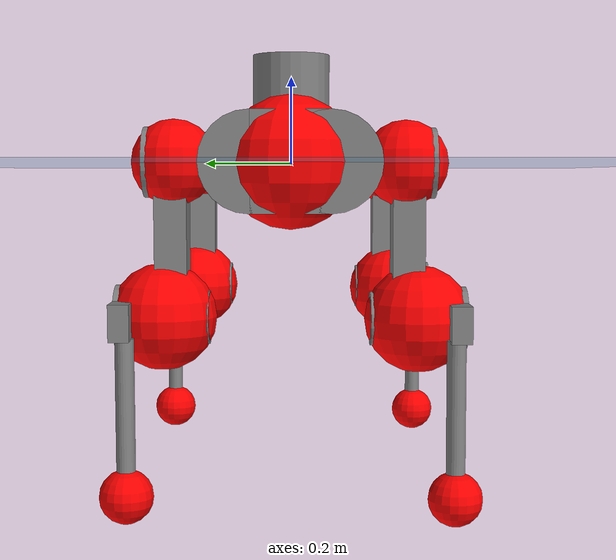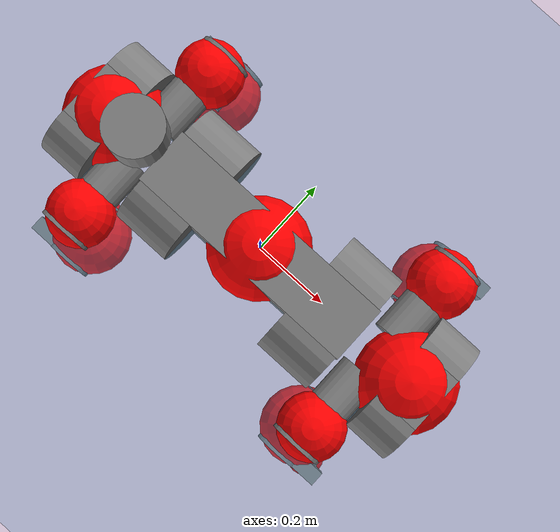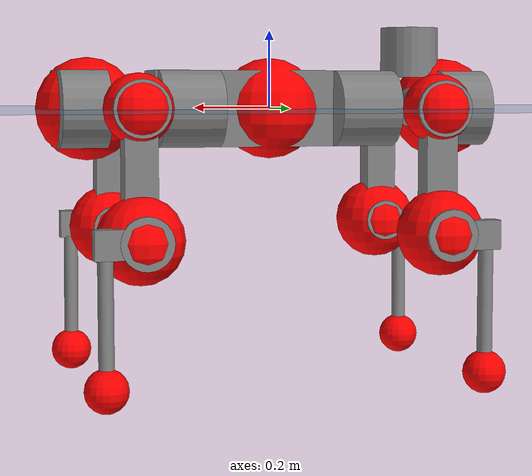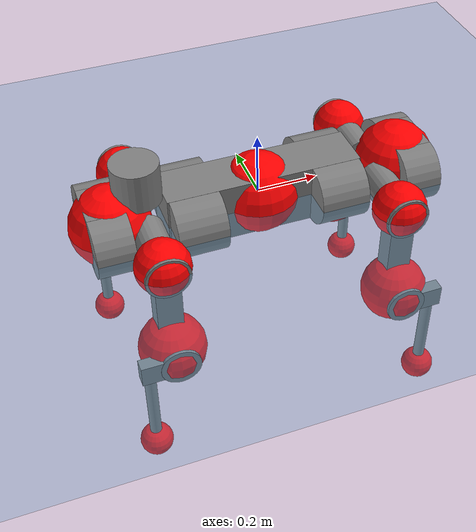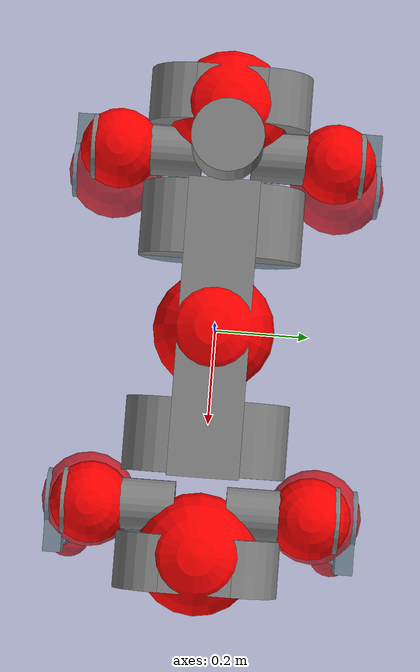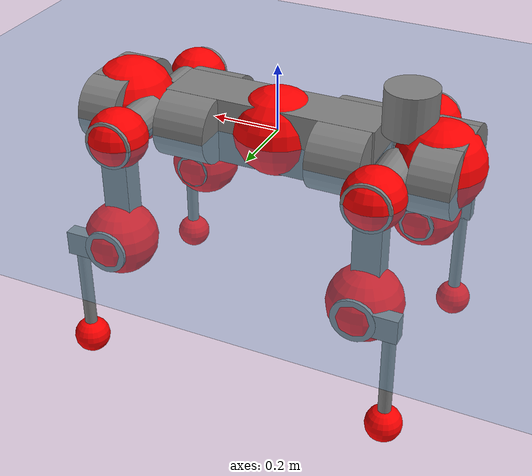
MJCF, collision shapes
<mujoco model="anymal_c">
  <compiler angle="radian" assetdir="assets" balanceinertia="true" inertiafromgeom="false"/>

  <option timestep="0.005" density="1.2" viscosity="2e-05"/>

  <size nkey="1"/>

  <visual>
    <quality shadowsize="8192"/>
    <map shadowclip="0.5"/>
  </visual>

  <default>
    <default class="/">
      <material specular="0" shininess="0.25"/>
      <geom contype="0" conaffinity="0" group="1" solref="-1000 -80"/>
      <site size="0.01 0.005 0.005" group="5"/>
      <general forcelimited="true" forcerange="-80 80" biastype="affine" gainprm="80" biasprm="0 -80 -2"/>
      <default class="anymal_c">
        <joint armature="0.01" damping="0.01" frictionloss="0.1"/>
        <default class="visual">
          <geom type="mesh" group="2"/>
          <default class="visual_zflip"/>
        </default>
        <default class="collision">
          <geom type="cylinder" group="3"/>
          <default class="foot">
            <geom size="0.03 0 0" type="sphere" condim="6" priority="1" friction="0.8 0.02 0.01" solimp="0.015 1 0.03"/>
          </default>
        </default>
      </default>
      <default class="reward_collision_sphere">
        <geom group="5" rgba="1 0 0 1"/>
      </default>
    </default>
  </default>

  <asset>
    <texture type="skybox" colorspace="auto" name="//unnamed_texture_0" builtin="gradient" rgb1="0.95 0.95 0.95" rgb2="0.95 0.95 0.95" width="100" height="600"/>
    <texture type="2d" colorspace="auto" name="texplane" builtin="checker" rgb1="0.345 0.575 0.748" rgb2="0.345 0.575 0.748" markrgb="1 1 1" width="512" height="512"/>
    <texture type="2d" colorspace="linear" name="base" file="base.png"/>
    <texture type="2d" colorspace="linear" name="top_shell" file="top_shell.png"/>
    <texture type="2d" colorspace="linear" name="bottom_shell" file="bottom_shell.png"/>
    <texture type="2d" colorspace="linear" name="remote" file="remote.png"/>
    <texture type="2d" colorspace="linear" name="hatch" file="hatch.png"/>
    <texture type="2d" colorspace="linear" name="handle" file="handle.png"/>
    <texture type="2d" colorspace="linear" name="face" file="face.png"/>
    <texture type="2d" colorspace="linear" name="battery" file="battery.png"/>
    <texture type="2d" colorspace="linear" name="lidar_cage" file="lidar_cage.png"/>
    <texture type="2d" colorspace="linear" name="depth_camera" file="depth_camera.png"/>
    <texture type="2d" colorspace="linear" name="wide_angle_camera" file="wide_angle_camera.png"/>
    <texture type="2d" colorspace="linear" name="lidar" file="lidar.png"/>
    <texture type="2d" colorspace="linear" name="drive" file="drive.png"/>
    <texture type="2d" colorspace="linear" name="hip_l" file="hip_l.png"/>
    <texture type="2d" colorspace="linear" name="shank_l" file="shank_l.png"/>
    <texture type="2d" colorspace="linear" name="foot" file="foot.png"/>
    <texture type="2d" colorspace="linear" name="thigh" file="thigh.png"/>
    <texture type="2d" colorspace="linear" name="shank_r" file="shank_r.png"/>
    <texture type="2d" colorspace="linear" name="hip_r" file="hip_r.png"/>
    <material name="MatPlane" class="/" texture="texplane" texuniform="true" texrepeat="2 2" specular="0.9" shininess="0.5"/>
    <material name="black_plastic" class="/" rgba="0.007 0.007 0.007 1"/>
    <material name="green" class="/" rgba="0.052 0.178 0.033 1"/>
    <material name="red" class="/" rgba="0.178 0.006 0.005 1"/>
    <material name="yellow" class="/" rgba="0.178 0.119 0.006 1"/>
    <material name="lwl" class="/" rgba="0.8 0.8 0.8 1"/>
    <material name="base" class="/" texture="base"/>
    <material name="top_shell" class="/" texture="top_shell"/>
    <material name="bottom_shell" class="/" texture="bottom_shell"/>
    <material name="hip_l" class="/" texture="hip_l"/>
    <material name="thigh" class="/" texture="thigh"/>
    <material name="shank_l" class="/" texture="shank_l"/>
    <material name="foot" class="/" texture="foot"/>
    <material name="hip_r" class="/" texture="hip_r"/>
    <material name="shank" class="/" texture="shank_r"/>
    <material name="hatch" class="/" texture="hatch"/>
    <material name="remote" class="/" texture="remote"/>
    <material name="handle" class="/" texture="handle"/>
    <material name="face" class="/" texture="face"/>
    <material name="depth_camera" class="/" texture="depth_camera"/>
    <material name="wide_angle_camera" class="/" texture="wide_angle_camera"/>
    <material name="battery" class="/" texture="battery"/>
    <material name="lidar_cage" class="/" texture="lidar_cage"/>
    <material name="lidar" class="/" texture="lidar"/>
    <material name="drive" class="/" texture="drive"/>
    <mesh name="base_0" class="/" file="base_0.obj"/>
    <mesh name="base_1" class="/" file="base_1.obj"/>
    <mesh name="base_2" class="/" file="base_2.obj"/>
    <mesh name="base_3" class="/" file="base_3.obj"/>
    <mesh name="base_4" class="/" file="base_4.obj"/>
    <mesh name="base_5" class="/" file="base_5.obj"/>
    <mesh name="top_shell" class="/" file="top_shell.obj"/>
    <mesh name="bottom_shell" class="/" file="bottom_shell.obj"/>
    <mesh name="remote" class="/" file="remote.obj"/>
    <mesh name="handle" class="/" file="handle.obj"/>
    <mesh name="face" class="/" file="face.obj"/>
    <mesh name="wide_angle_camera" class="/" file="wide_angle_camera.obj"/>
    <mesh name="depth_camera" class="/" file="depth_camera.obj"/>
    <mesh name="battery" class="/" file="battery.obj"/>
    <mesh name="lidar_cage" class="/" file="lidar_cage.obj"/>
    <mesh name="lidar" class="/" file="lidar.obj"/>
    <mesh name="drive" class="/" file="drive.obj"/>
    <mesh name="hip_l" class="/" file="hip_l.obj"/>
    <mesh name="thigh" class="/" file="thigh.obj"/>
    <mesh name="shank_l" class="/" file="shank_l.obj"/>
    <mesh name="foot" class="/" file="foot.obj"/>
    <mesh name="hip_r" class="/" file="hip_r.obj"/>
    <mesh name="hatch" class="/" file="hatch.obj"/>
    <mesh name="shank_r" class="/" file="shank_r.obj"/>
  </asset>

  <worldbody>
    <geom name="floor" class="/" size="100 100 0.125" type="plane" group="0" material="MatPlane"/>
    <light name="toplight_shadow" class="/" pos="0 0 5" dir="0.0990148 0.0990148 -0.990148" type="directional" ambient="0.04 0.04 0.04" diffuse="0.55 0.55 0.55" specular="0.12 0.12 0.12"/>
    <light name="toplight_fill" class="/" pos="0 0 5" dir="0.0990148 0.0990148 -0.990148" type="directional" castshadow="false" ambient="0.04 0.04 0.04" diffuse="0.3 0.3 0.3" specular="0.08 0.08 0.08"/>
    <body name="trunk" childclass="anymal_c" pos="-0.000483718 -0.00256607 -0.00103378" quat="1 6.36254e-05 -1.95243e-05 -2.87229e-05">
      <inertial pos="0.00338319 -0.00232803 0.054621" quat="0.499711 0.501229 0.498925 0.500133" mass="23.9784" diaginertia="0.83292 0.96114 0.350936"/>
      <joint name="//unnamed_joint_0" type="free" armature="0" damping="0" frictionloss="0"/>
      <geom name="//unnamed_geom_1" class="visual" material="green" mesh="base_0"/>
      <geom name="//unnamed_geom_2" class="visual" material="yellow" mesh="base_1"/>
      <geom name="//unnamed_geom_3" class="visual" material="red" mesh="base_2"/>
      <geom name="//unnamed_geom_4" class="visual" material="black_plastic" mesh="base_3"/>
      <geom name="//unnamed_geom_5" class="visual" material="lwl" mesh="base_4"/>
      <geom name="//unnamed_geom_6" class="visual" material="base" mesh="base_5"/>
      <geom name="trunk_1" class="collision" size="0.315993 0.0762741 0.0980667" type="box"/>
      <geom name="trunk_2" class="collision" size="0.0980667 0.0789982" pos="0.231286 0.0771612 0" quat="0.707107 0 0.707107 0"/>
      <geom name="trunk_3" class="collision" size="0.0980667 0.0789982" pos="-0.231286 0.0771612 0" quat="0.707107 0 0.707107 0"/>
      <geom name="trunk_4" class="collision" size="0.0980667 0.0789982" pos="0.231286 -0.0771612 0" quat="0.707107 0 0.707107 0"/>
      <geom name="trunk_5" class="collision" size="0.0980667 0.0789982" pos="-0.231286 -0.0771612 0" quat="0.707107 0 0.707107 0"/>
      <geom name="//unnamed_geom_12" class="visual" material="top_shell" mesh="top_shell"/>
      <geom name="//unnamed_geom_13" class="visual" material="bottom_shell" mesh="bottom_shell"/>
      <geom name="//unnamed_geom_14" class="visual" material="remote" mesh="remote"/>
      <geom name="//unnamed_geom_15" class="visual" material="handle" mesh="handle"/>
      <geom name="//unnamed_geom_16" class="visual" pos="0.440772 0 0" quat="1 0 0 0" material="face" mesh="face"/>
      <geom name="trunk_6" class="collision" size="0.0599297 0.0762741 0.0980667" pos="0.499258 0 0" type="box"/>
      <geom name="//unnamed_geom_18" class="collision" size="0.0980667 0.0599297" pos="0.499258 0.0771612 0" quat="0.707107 0 0.707107 0"/>
      <geom name="//unnamed_geom_19" class="collision" size="0.0980667 0.0599297" pos="0.499258 -0.0771612 0" quat="0.707107 0 0.707107 0"/>
      <geom name="//unnamed_geom_20" class="visual" pos="0.490912 0 -0.0325163" quat="0.965926 0 0.258819 0" material="depth_camera" mesh="depth_camera"/>
      <geom name="//unnamed_geom_21" class="visual" pos="0.545515 0 0.016515" material="wide_angle_camera" mesh="wide_angle_camera"/>
      <geom name="//unnamed_geom_22" class="visual_zflip" pos="-0.440772 0 0" quat="0 0 0 1" material="face" mesh="face"/>
      <geom name="trunk_7" class="collision" size="0.0599297 0.0762741 0.0980667" pos="-0.499258 0 0" quat="0 0 0 1" type="box"/>
      <geom name="//unnamed_geom_24" class="collision" size="0.0980667 0.0599297" pos="-0.499258 -0.0771612 0" quat="0 -0.707107 0 0.707107"/>
      <geom name="//unnamed_geom_25" class="collision" size="0.0980667 0.0599297" pos="-0.499258 0.0771612 0" quat="0 -0.707107 0 0.707107"/>
      <geom name="//unnamed_geom_26" class="visual" pos="-0.490912 0 -0.0325163" quat="0 -0.258819 0 0.965926" material="depth_camera" mesh="depth_camera"/>
      <geom name="//unnamed_geom_27" class="visual_zflip" pos="-0.545515 0 0.016515" quat="0 0 0 1" material="wide_angle_camera" mesh="wide_angle_camera"/>
      <geom name="//unnamed_geom_28" class="visual" material="battery" mesh="battery"/>
      <geom name="//unnamed_geom_29" class="visual" pos="0 0.0847944 0.0317455" quat="0.683013 -0.183013 0.183013 0.683013" material="depth_camera" mesh="depth_camera"/>
      <geom name="//unnamed_geom_30" class="visual" pos="0 -0.0847944 0.0317455" quat="0.683013 0.183013 0.183013 -0.683013" material="depth_camera" mesh="depth_camera"/>
      <geom name="//unnamed_geom_31" class="visual" pos="-0.387071 0 0.0810857" quat="1 0 0 0" material="lidar_cage" mesh="lidar_cage"/>
      <geom name="trunk_8" class="collision" size="0.0762741 0.0653778" pos="-0.387071 0 0.147278"/>
      <geom name="//unnamed_geom_33" class="visual" pos="-0.387071 1.52906e-05 0.156876" quat="0.707107 0 0 -0.707107" material="lidar" mesh="lidar"/>
      <geom name="//unnamed_geom_34" class="visual" pos="0.318908 0.11464 -1.5591e-11" quat="0.258819 0.965926 0 0" material="drive" mesh="drive"/>
      <geom name="//unnamed_geom_35" class="visual" pos="0.318908 -0.11464 1.5591e-11" quat="0.258819 -0.965926 0 0" material="drive" mesh="drive"/>
      <geom name="//unnamed_geom_36" class="visual" pos="-0.318908 0.11464 1.5591e-11" quat="0 0 0.965926 -0.258819" material="drive" mesh="drive"/>
      <geom name="//unnamed_geom_37" class="visual" pos="-0.318908 -0.11464 -1.5591e-11" quat="0 0 -0.965926 -0.258819" material="drive" mesh="drive"/>
      <geom name="//unnamed_geom_38" class="visual" pos="0.123352 0 0.080534" quat="1 0 0 0" material="hatch" mesh="hatch"/>
      <geom name="//unnamed_geom_39" class="reward_collision_sphere" size="0.130756"/>
      <geom name="//unnamed_geom_40" class="reward_collision_sphere" size="0.130756" pos="0.478522 0 0"/>
      <geom name="//unnamed_geom_41" class="reward_collision_sphere" size="0.130756" pos="-0.478522 0 0"/>
      <site name="imu" pos="0.277819 0.0231262 0.0382043" size="0.0108963"/>
      <camera name="track" pos="0 -2.2046 0" quat="0.707107 0.707107 0 0" mode="trackcom"/>
      <camera name="ego_camera" pos="0.478522 0 -0.0441282" quat="-0.5 -0.5 0.5 0.5"/>
      <body name="LF_HIP" pos="0.32213 0.115355 0.00185976" quat="0.258814 0.965927 0.00107831 -0.00053419">
        <inertial pos="0.0609745 -0.0165567 -0.00649225" quat="-0.128439 0.711959 -0.131228 0.677789" mass="3.49334" diaginertia="0.00795898 0.00772161 0.00534203"/>
        <joint name="LF_HAA" pos="0 0 0" axis="0.999999 -0.00135015 -0.000260307" stiffness="0.00569054" range="-0.712525 0.540819" armature="0.0112455" damping="0" frictionloss="0.124271"/>
        <geom name="//unnamed_geom_42" class="visual" pos="0 -9.17149e-07 1.50641e-07" quat="0.258819 -0.965926 0 0" material="hip_l" mesh="hip_l"/>
        <geom name="//unnamed_geom_43" class="visual" pos="0.0636966 -0.0776948 -0.0448638" quat="0.183013 -0.683013 0.683013 0.183013" material="drive" mesh="drive"/>
        <geom name="//unnamed_geom_44" class="collision" size="0.0544815 0.0762741" pos="0.0636966 -0.0131833 -0.00761764" quat="-0.353553 -0.612372 0.612372 -0.353553"/>
        <body name="LF_THIGH" pos="0.0642191 -0.079562 -0.0465757" quat="0.183161 -0.681994 0.683893 0.183372">
          <inertial pos="0.035666 0.00286791 -0.271499" quat="0.993417 -0.0142463 -0.081457 0.0792733" mass="3.97107" diaginertia="0.0402236 0.0480007 0.00666454"/>
          <joint name="LF_HFE" pos="0 0 0" axis="0.99993 -0.00529522 -0.0105677" range="-3.0968 3.1703" armature="0.0121875" damping="0.0100259" frictionloss="0.119536"/>
          <geom name="//unnamed_geom_45" class="visual" pos="-0.000774354 -1.2202e-06 0" quat="0.707107 0 0 -0.707107" material="thigh" mesh="thigh"/>
          <geom name="//unnamed_geom_46" class="collision" size="0.070826 0.0435852" pos="0.0425353 0 0" quat="0.5 0.5 -0.5 -0.5"/>
          <geom name="//unnamed_geom_47" class="collision" size="0.0408611 0.0326889 0.15398" pos="0.0319015 0 -0.155898" quat="0.707107 0 0 -0.707107" type="box"/>
          <geom name="//unnamed_geom_48" class="visual" pos="0.106657 0 -0.314414" quat="1 0 0 0" material="drive" mesh="drive"/>
          <geom name="//unnamed_geom_49" class="collision" size="0.0544815 0.0762741" pos="0.0322205 0 -0.314414" quat="0.707107 0 0.707107 0"/>
          <geom name="//unnamed_geom_50" class="reward_collision_sphere" size="0.0871704" pos="0.0265846 0 0"/>
          <body name="LF_SHANK" pos="0.105057 -0.0016125 -0.316954" quat="0.999999 0.000184964 -0.00118483 -0.000751312">
            <inertial pos="0.00867378 -0.0673628 -0.0898618" quat="0.992839 -0.116773 -0.00308977 -0.0249976" mass="0.774147" diaginertia="0.0134522 0.0153745 0.00181519"/>
            <joint name="LF_KFE" pos="0 0 0" axis="0.999977 0.00306294 0.00599881" range="-3.15959 3.14821" armature="0.00935633" damping="0.010404" frictionloss="0.10957"/>
            <geom name="//unnamed_geom_51" class="visual" pos="-0.0002525 -0.00134634 0" quat="0.707107 0 0 -0.707107" material="shank_l" mesh="shank_l"/>
            <geom name="LF_kfe_act" class="collision" size="0.0653778 0.0217926" pos="0.0212676 0 0" quat="0.5 0.5 -0.5 -0.5"/>
            <geom name="//unnamed_geom_53" class="collision" size="0.0626527 0.036775 0.020703" pos="0.0212676 -0.0633813 0" quat="0.5 0.5 -0.5 -0.5" type="box"/>
            <geom name="//unnamed_geom_54" class="visual" pos="0.0138772 -0.0973814 -0.372851" quat="0.382683 0 0 -0.92388" material="foot" mesh="foot"/>
            <geom name="LF_calf" class="collision" size="0.0190685 0.153912" pos="0.0138771 -0.0969475 -0.186425" quat="0.707107 0 0 -0.707107"/>
            <geom name="LF_foot" class="foot" size="0.0303045" pos="0.0138771 -0.0969475 -0.348028" quat="0.707107 0 0 -0.707107"/>
            <geom name="//unnamed_geom_57" class="reward_collision_sphere" size="0.108963" pos="-0.0531691 0 0"/>
            <geom name="//unnamed_geom_58" class="reward_collision_sphere" size="0.0544815" pos="0.0138771 -0.0969475 -0.348028"/>
            <site name="LF_foot" class="foot" pos="0.0138771 -0.0969475 -0.348028" quat="0.707107 0 0 -0.707107" size="0.0108963"/>
          </body>
        </body>
      </body>
      <body name="RF_HIP" pos="0.318428 -0.116862 -0.00214758" quat="0.258363 -0.966048 -0.000314762 0.00036834">
        <inertial pos="0.0586414 0.0177395 -0.00875033" quat="0.138196 0.6789 0.124436 0.71029" mass="3.46114" diaginertia="0.0077342 0.00787308 0.00547091"/>
        <joint name="RF_HAA" pos="0 0 0" axis="0.999877 -0.00645681 -0.0142802" range="-0.499194 0.723247" armature="0.011546" damping="0.0168609" frictionloss="0.118289"/>
        <geom name="//unnamed_geom_59" class="visual" pos="0 9.17141e-07 1.50641e-07" quat="0.258819 0.965926 0 0" material="hip_r" mesh="hip_r"/>
        <geom name="//unnamed_geom_60" class="visual" pos="0.0636966 0.0776948 -0.0448638" quat="0.183013 0.683013 0.683013 -0.183013" material="drive" mesh="drive"/>
        <geom name="//unnamed_geom_61" class="collision" size="0.0544815 0.0762741" pos="0.0636966 0.0131833 -0.00761764" quat="-0.353553 0.612372 0.612372 0.353553"/>
        <body name="RF_THIGH" pos="0.0653376 0.0800426 -0.0434477" quat="0.18206 0.683988 0.682165 -0.183481">
          <inertial pos="0.0302891 -0.000647193 -0.270016" quat="0.992898 0.0056328 -0.0730615 0.0937236" mass="4.22795" diaginertia="0.0417699 0.0501274 0.00685843"/>
          <joint name="RF_HFE" pos="0 0 0" axis="0.999971 0.00526231 -0.00546264" range="-3.17021 3.13449" armature="0.0103838" damping="0.0150296" frictionloss="0.108623"/>
          <geom name="//unnamed_geom_62" class="visual" pos="-0.000774354 -1.2202e-06 0" quat="0.707107 0 0 -0.707107" material="thigh" mesh="thigh"/>
          <geom name="//unnamed_geom_63" class="collision" size="0.070826 0.0435852" pos="0.0425353 0 0" quat="0.5 0.5 0.5 0.5"/>
          <geom name="//unnamed_geom_64" class="collision" size="0.0408611 0.0326889 0.15398" pos="0.0319015 0 -0.155898" quat="0.707107 0 0 0.707107" type="box"/>
          <geom name="//unnamed_geom_65" class="visual" pos="0.106657 0 -0.314414" quat="1 0 0 0" material="drive" mesh="drive"/>
          <geom name="//unnamed_geom_66" class="collision" size="0.0544815 0.0762741" pos="0.0322205 0 -0.314414" quat="0.707107 0 0.707107 0"/>
          <geom name="//unnamed_geom_67" class="reward_collision_sphere" size="0.0871704" pos="0.0265846 0 0"/>
          <body name="RF_SHANK" pos="0.10503 -0.00108808 -0.317029" quat="0.999999 0.000562823 -0.000825753 0.000432048">
            <inertial pos="0.00808437 0.0678806 -0.0860221" quat="0.992271 0.119623 -0.013962 0.0299037" mass="0.753007" diaginertia="0.0139097 0.0150955 0.00186555"/>
            <joint name="RF_KFE" pos="0 0 0" axis="0.999982 0.00337825 0.00501629" range="-3.13412 3.14825" armature="0.0116516" damping="0.017467" frictionloss="0.0972086"/>
            <geom name="//unnamed_geom_68" class="visual" pos="-0.000252499 0.00134634 0" quat="0.707107 0 0 0.707107" material="shank" mesh="shank_r"/>
            <geom name="RF_kfe_act" class="collision" size="0.0653778 0.0217926" pos="0.0212676 0 0" quat="0.5 0.5 0.5 0.5"/>
            <geom name="//unnamed_geom_70" class="collision" size="0.0626527 0.036775 0.020703" pos="0.0212676 0.0633813 0" quat="0.5 0.5 0.5 0.5" type="box"/>
            <geom name="//unnamed_geom_71" class="visual" pos="0.0138771 0.0973814 -0.372851" quat="0.382683 0 0 0.92388" material="foot" mesh="foot"/>
            <geom name="RF_calf" class="collision" size="0.0190685 0.153912" pos="0.0138771 0.0969475 -0.186425" quat="0.707107 0 0 0.707107"/>
            <geom name="RF_foot" class="foot" size="0.0256099" pos="0.0138771 0.0969475 -0.348028" quat="0.707107 0 0 0.707107"/>
            <geom name="//unnamed_geom_74" class="reward_collision_sphere" size="0.108963" pos="-0.0531691 0 0"/>
            <geom name="//unnamed_geom_75" class="reward_collision_sphere" size="0.0544815" pos="0.0138771 0.0969475 -0.348028"/>
            <site name="RF_foot" class="foot" pos="0.0138771 0.0969475 -0.348028" quat="0.707107 0 0 0.707107" size="0.0108963"/>
          </body>
        </body>
      </body>
      <body name="LH_HIP" pos="-0.318765 0.115146 0.0021687" quat="7.68596e-05 0.000611609 0.965672 -0.259764">
        <inertial pos="0.0608652 0.0143903 -0.00648617" quat="0.133878 0.683213 0.127995 0.706338" mass="3.75006" diaginertia="0.0082061 0.00823701 0.00548986"/>
        <joint name="LH_HAA" pos="0 0 0" axis="0.999999 0.00064191 -0.00110181" range="-0.490496 0.680782" armature="0.0109388" damping="0.00314363" frictionloss="0.108866"/>
        <geom name="//unnamed_geom_76" class="visual" pos="0 9.17141e-07 1.50641e-07" quat="-0.258819 -0.965926 0 0" material="hip_r" mesh="hip_r"/>
        <geom name="//unnamed_geom_77" class="visual" pos="0.0636966 0.0776948 -0.0448638" quat="0.183013 0.683013 0.683013 -0.183013" material="drive" mesh="drive"/>
        <geom name="//unnamed_geom_78" class="collision" size="0.0544815 0.0762741" pos="0.0636966 0.0131833 -0.00761764" quat="-0.353553 0.612372 0.612372 0.353553"/>
        <body name="LH_THIGH" pos="0.0602423 0.0823399 -0.0465222" quat="0.182704 0.682939 0.683235 -0.182765">
          <inertial pos="0.0333441 0.000871923 -0.27219" quat="0.992409 -0.00564261 -0.0719309 0.0995956" mass="4.08837" diaginertia="0.0416522 0.0511766 0.00708779"/>
          <joint name="LH_HFE" pos="0 0 0" axis="0.999997 -0.000990394 -0.00201349" stiffness="0.00293881" range="-3.19295 3.1965" armature="0.00989426" damping="0" frictionloss="0.114571"/>
          <geom name="//unnamed_geom_79" class="visual" pos="-0.000774354 -1.2202e-06 0" quat="0.707107 0 0 -0.707107" material="thigh" mesh="thigh"/>
          <geom name="//unnamed_geom_80" class="collision" size="0.070826 0.0435852" pos="0.0425353 0 0" quat="0.5 0.5 -0.5 -0.5"/>
          <geom name="//unnamed_geom_81" class="collision" size="0.0408611 0.0326889 0.15398" pos="0.0319015 0 -0.155898" quat="0.707107 0 0 -0.707107" type="box"/>
          <geom name="//unnamed_geom_82" class="visual" pos="0.106657 0 -0.314414" quat="1 0 0 0" material="drive" mesh="drive"/>
          <geom name="//unnamed_geom_83" class="collision" size="0.0544815 0.0762741" pos="0.0322205 0 -0.314414" quat="0.707107 0 0.707107 0"/>
          <geom name="//unnamed_geom_84" class="reward_collision_sphere" size="0.0871704" pos="0.0265846 0 0"/>
          <body name="LH_SHANK" pos="0.103943 -0.000155731 -0.31297" quat="1 -0.000113286 0.000396485 -0.000170902">
            <inertial pos="0.00687818 0.0674683 -0.0882954" quat="0.992691 0.117756 -0.00486114 0.0259838" mass="0.815901" diaginertia="0.0146712 0.0157393 0.00188741"/>
            <joint name="LH_KFE" pos="0 0 0" axis="0.999867 -0.00408474 0.0157845" stiffness="0.0013217" range="-3.12619 3.0881" armature="0.0107038" damping="0" frictionloss="0.108536"/>
            <geom name="//unnamed_geom_85" class="visual" pos="-0.000252499 0.00134634 0" quat="-0.707107 0 0 -0.707107" material="shank" mesh="shank_r"/>
            <geom name="LH_kfe_act" class="collision" size="0.0653778 0.0217926" pos="0.0212676 0 0" quat="0.5 0.5 -0.5 -0.5"/>
            <geom name="//unnamed_geom_87" class="collision" size="0.0626527 0.036775 0.020703" pos="0.0212676 0.0633813 0" quat="0.5 0.5 -0.5 -0.5" type="box"/>
            <geom name="//unnamed_geom_88" class="visual" pos="0.0138771 0.0973814 -0.372851" quat="-0.382683 0 0 -0.92388" material="foot" mesh="foot"/>
            <geom name="LH_calf" class="collision" size="0.0190685 0.153912" pos="0.0138771 0.0969475 -0.186425" quat="0.707107 0 0 -0.707107"/>
            <geom name="LH_foot" class="foot" size="0.0361355" pos="0.0138771 0.0969475 -0.348028" quat="0.707107 0 0 -0.707107"/>
            <geom name="//unnamed_geom_91" class="reward_collision_sphere" size="0.108963" pos="-0.0531691 0 0"/>
            <geom name="//unnamed_geom_92" class="reward_collision_sphere" size="0.0544815" pos="0.0138771 0.0969475 -0.348028"/>
            <site name="LH_foot" class="foot" pos="0.0138771 0.0969475 -0.348028" quat="0.707107 0 0 -0.707107" size="0.0108963"/>
          </body>
        </body>
      </body>
      <body name="RH_HIP" pos="-0.317918 -0.114229 -0.00115605" quat="0.000379164 0.00102578 -0.965819 -0.259214">
        <inertial pos="0.0611225 -0.0147498 -0.0121486" quat="-0.128846 0.711226 -0.136951 0.677348" mass="3.68805" diaginertia="0.00851291 0.00848172 0.00567326"/>
        <joint name="RH_HAA" pos="0 0 0" axis="0.999957 0.00698889 -0.00605627" stiffness="0.00378208" range="-0.708535 0.459356" armature="0.0110437" damping="0.0106021" frictionloss="0.103718"/>
        <geom name="//unnamed_geom_93" class="visual" pos="0 -9.17149e-07 1.50641e-07" quat="-0.258819 0.965926 0 0" material="hip_l" mesh="hip_l"/>
        <geom name="//unnamed_geom_94" class="visual" pos="0.0636966 -0.0776948 -0.0448638" quat="-0.183013 0.683013 -0.683013 -0.183013" material="drive" mesh="drive"/>
        <geom name="//unnamed_geom_95" class="collision" size="0.0544815 0.0762741" pos="0.0636966 -0.0131833 -0.00761764" quat="0.353553 0.612372 -0.612372 0.353553"/>
        <body name="RH_THIGH" pos="0.0627424 -0.0775072 -0.044768" quat="-0.182983 0.682822 -0.682998 -0.183808">
          <inertial pos="0.0327757 -0.00165743 -0.26805" quat="0.993024 -0.00441675 -0.0813902 0.0852038" mass="3.7959" diaginertia="0.0391614 0.0466271 0.00658983"/>
          <joint name="RH_HFE" pos="0 0 0" axis="0.999963 0.00587755 0.00620154" range="-3.14393 3.20093" armature="0.0113743" damping="0.00812887" frictionloss="0.107811"/>
          <geom name="//unnamed_geom_96" class="visual" pos="-0.000774354 -1.2202e-06 0" quat="0.707107 0 0 -0.707107" material="thigh" mesh="thigh"/>
          <geom name="//unnamed_geom_97" class="collision" size="0.070826 0.0435852" pos="0.0425353 0 0" quat="0.5 0.5 0.5 0.5"/>
          <geom name="//unnamed_geom_98" class="collision" size="0.0408611 0.0326889 0.15398" pos="0.0319015 0 -0.155898" quat="0.707107 0 0 0.707107" type="box"/>
          <geom name="//unnamed_geom_99" class="visual" pos="0.106657 0 -0.314414" quat="1 0 0 0" material="drive" mesh="drive"/>
          <geom name="//unnamed_geom_100" class="collision" size="0.0544815 0.0762741" pos="0.0322205 0 -0.314414" quat="0.707107 0 0.707107 0"/>
          <geom name="//unnamed_geom_101" class="reward_collision_sphere" size="0.0871704" pos="0.0265846 0 0"/>
          <body name="RH_SHANK" pos="0.106917 0.000541675 -0.314634" quat="0.999999 -1.95052e-05 -0.00072537 -0.00107263">
            <inertial pos="0.00618184 -0.067571 -0.0901734" quat="0.992838 -0.11792 0.00561779 -0.0183607" mass="0.773257" diaginertia="0.0141582 0.0148655 0.00183763"/>
            <joint name="RH_KFE" pos="0 0 0" axis="0.999976 -0.00683062 -0.00119893" range="-3.17823 3.16665" armature="0.00990438" damping="0.00826643" frictionloss="0.110871"/>
            <geom name="//unnamed_geom_102" class="visual" pos="-0.0002525 -0.00134634 0" quat="0.707107 0 0 -0.707107" material="shank_l" mesh="shank_l"/>
            <geom name="RH_kfe_act" class="collision" size="0.0653778 0.0217926" pos="0.0212676 0 0" quat="0.5 0.5 0.5 0.5"/>
            <geom name="//unnamed_geom_104" class="collision" size="0.0626527 0.036775 0.020703" pos="0.0212676 -0.0633813 0" quat="0.5 0.5 0.5 0.5" type="box"/>
            <geom name="//unnamed_geom_105" class="visual" pos="0.0138772 -0.0973814 -0.372851" quat="0.382683 0 0 -0.92388" material="foot" mesh="foot"/>
            <geom name="RH_calf" class="collision" size="0.0190685 0.153912" pos="0.0138771 -0.0969475 -0.186425" quat="0.707107 0 0 0.707107"/>
            <geom name="RH_foot" class="foot" size="0.0279669" pos="0.0138771 -0.0969475 -0.348028" quat="0.707107 0 0 0.707107"/>
            <geom name="//unnamed_geom_108" class="reward_collision_sphere" size="0.108963" pos="-0.0531691 0 0"/>
            <geom name="//unnamed_geom_109" class="reward_collision_sphere" size="0.0544815" pos="0.0138771 -0.0969475 -0.348028"/>
            <site name="RH_foot" class="foot" pos="0.0138771 -0.0969475 -0.348028" quat="0.707107 0 0 0.707107" size="0.0108963"/>
          </body>
        </body>
      </body>
    </body>
  </worldbody>

  <contact>
    <pair class="/" geom1="floor" geom2="LF_foot" name="//unnamed_contact_0"/>
    <pair class="/" geom1="floor" geom2="RF_foot" name="//unnamed_contact_1"/>
    <pair class="/" geom1="floor" geom2="LH_foot" name="//unnamed_contact_2"/>
    <pair class="/" geom1="floor" geom2="RH_foot" name="//unnamed_contact_3"/>
  </contact>

  <actuator>
    <general name="LF_HAA" class="/" joint="LF_HAA" forcerange="-88.3114 88.3114" gainprm="90.9144" biasprm="0 -90.9144 -2.32"/>
    <general name="LF_HFE" class="/" joint="LF_HFE" forcerange="-77.8247 77.8247" gainprm="90.9144" biasprm="0 -90.9144 -2.32"/>
    <general name="LF_KFE" class="/" joint="LF_KFE" forcerange="-86.3569 86.3569" gainprm="90.9144" biasprm="0 -90.9144 -2.32"/>
    <general name="RF_HAA" class="/" joint="RF_HAA" forcerange="-92.2006 92.2006" gainprm="90.9144" biasprm="0 -90.9144 -2.32"/>
    <general name="RF_HFE" class="/" joint="RF_HFE" forcerange="-92.7633 92.7633" gainprm="90.9144" biasprm="0 -90.9144 -2.32"/>
    <general name="RF_KFE" class="/" joint="RF_KFE" forcerange="-96.8892 96.8892" gainprm="90.9144" biasprm="0 -90.9144 -2.32"/>
    <general name="LH_HAA" class="/" joint="LH_HAA" forcerange="-88.4842 88.4842" gainprm="90.9144" biasprm="0 -90.9144 -2.32"/>
    <general name="LH_HFE" class="/" joint="LH_HFE" forcerange="-87.7678 87.7678" gainprm="90.9144" biasprm="0 -90.9144 -2.32"/>
    <general name="LH_KFE" class="/" joint="LH_KFE" forcerange="-79.8886 79.8886" gainprm="90.9144" biasprm="0 -90.9144 -2.32"/>
    <general name="RH_HAA" class="/" joint="RH_HAA" forcerange="-83.8168 83.8168" gainprm="90.9144" biasprm="0 -90.9144 -2.32"/>
    <general name="RH_HFE" class="/" joint="RH_HFE" forcerange="-89.6693 89.6693" gainprm="90.9144" biasprm="0 -90.9144 -2.32"/>
    <general name="RH_KFE" class="/" joint="RH_KFE" forcerange="-86.7748 86.7748" gainprm="90.9144" biasprm="0 -90.9144 -2.32"/>
  </actuator>

  <sensor>
    <gyro site="imu" name="imu_angular_velocity"/>
    <velocimeter site="imu" name="imu_linear_velocity"/>
    <framelinvel objtype="site" objname="LF_foot" name="LF_foot_global_linear_velocity"/>
    <framelinvel objtype="site" objname="RF_foot" name="RF_foot_global_linear_velocity"/>
    <framelinvel objtype="site" objname="LH_foot" name="LH_foot_global_linear_velocity"/>
    <framelinvel objtype="site" objname="RH_foot" name="RH_foot_global_linear_velocity"/>
  </sensor>

  <keyframe>
    <key name="home" qpos="0 0 0.55 1 0 0 0 0 0.4 -0.8 0 -0.4 0.8 0 -0.4 0.8 0 0.4 -0.8"/>
  </keyframe>
</mujoco>
